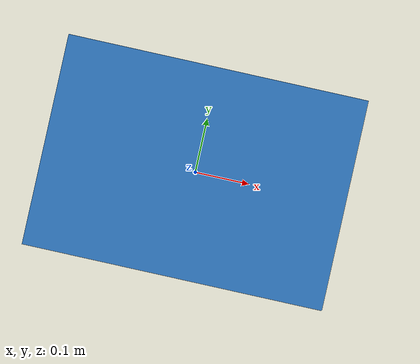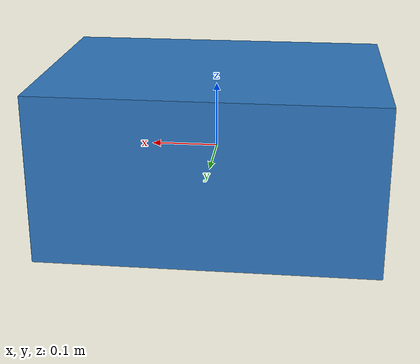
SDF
<?xml version="1.0" ?>
<sdf version="1.6">
  <model name="rov_model">
    <pose>0 0 0 0 0 0</pose>
    <static>false</static>

    <!-- Main Chassis Link -->
    <link name="base_link">
      <inertial>
        <mass>10.0</mass>
        <pose>0 0 0 0 0 0</pose>
        <inertia>
          <ixx>0.2</ixx>
          <ixy>0.0</ixy>
          <ixz>0.0</ixz>
          <iyy>0.3</iyy>
          <iyz>0.0</iyz>
          <izz>0.3</izz>
        </inertia>
      </inertial>

      <collision name="chassis_collision">
        <geometry>
          <box>
            <size>0.5 0.35 0.25</size>
          </box>
        </geometry>
      </collision>

      <visual name="chassis_visual">
        <geometry>
          <box>
            <size>0.5 0.35 0.25</size>
          </box>
        </geometry>
        <material>
          <ambient>0.1 0.1 0.1 1</ambient>
          <diffuse>0.2 0.5 0.8 1</diffuse>
        </material>
      </visual>

      <!-- Downward Facing Camera Sensor Link & Joint -->
      <sensor name="downward_camera" type="camera">
        <pose>0.15 0 -0.1 0 1.5708 0</pose> <!-- Oriented straight down (-Z axis) -->
        <camera>
          <horizontal_fov>1.3962634</horizontal_fov>
          <image>
            <width>640</width>
            <height>480</height>
            <format>R8G8B8</format>
          </image>
          <clip>
            <near>0.05</near>
            <far>10.0</far>
          </clip>
        </camera>
        <always_on>true</always_on>
        <update_rate>30</update_rate>
        <visualize>true</visualize>
        <plugin name="camera_controller" filename="libgazebo_ros_camera.so">
          <ros>
            <namespace></namespace>
            <remapping>image_raw:=/camera/image_raw</remapping>
            <remapping>camera_info:=/camera/camera_info</remapping>
          </ros>
          <camera_name>downward_camera</camera_name>
          <frame_name>camera_link</frame_name>
        </plugin>
      </sensor>

      <!-- Depth / Pressure Sensor (IMU/Altimeter plugin simulation) -->
      <sensor name="depth_sensor" type="altimeter">
        <always_on>true</always_on>
        <update_rate>50</update_rate>
        <plugin name="depth_sensor_plugin" filename="libgazebo_ros_altimeter.so">
          <ros>
            <namespace></namespace>
            <remapping>altimeter/imu:=/fmu/out/vehicle_odometry</remapping>
          </ros>
        </plugin>
      </sensor>

    </link>
  </model>
</sdf>
